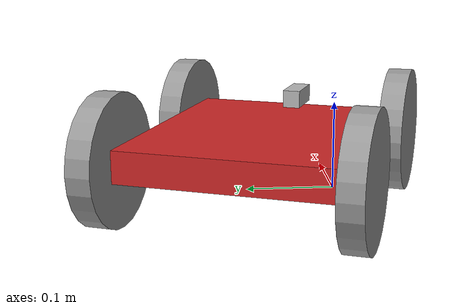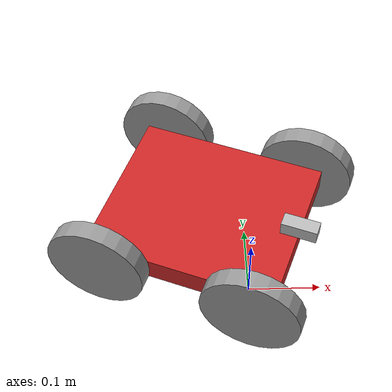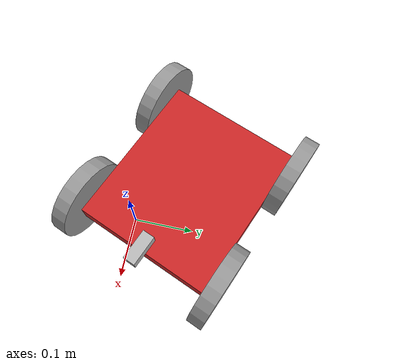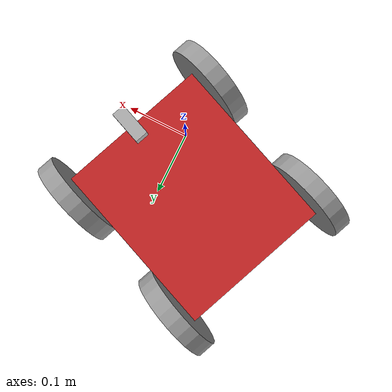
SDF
<sdf version="1.6">
 <world name="default">
  <model name="/smile">
   <link name="base_link">
    <inertial>
     <mass>1</mass>
     <inertia>
      <ixx>0.00602108</ixx>
      <ixy>0</ixy>
      <ixz>0</ixz>
      <iyy>0.00444851</iyy>
      <iyz>0</iyz>
      <izz>0.0102822</izz>
     </inertia>
    </inertial>
    <collision name="base_link_fixed_joint_lump__chassis_collision">
     <geometry><box><size>0.2667 0.2286 0.033528</size></box></geometry>
    </collision>
    <collision name="base_link_fixed_joint_lump__camera_link_collision_1">
     <pose>0.13335 0 0.026764 0 -0 0</pose>
     <geometry><box><size>0.05 0.02 0.02</size></box></geometry>
    </collision>
    <visual name="base_link_fixed_joint_lump__chassis_visual">
     <geometry><box><size>0.2667 0.2286 0.033528</size></box></geometry>
     <material>
      <script><name>Gazebo/Red</name><uri>file://media/materials/scripts/gazebo.material</uri></script>
     </material>
    </visual>
    <visual name="base_link_fixed_joint_lump__camera_link_visual_1">
     <pose>0.13335 0 0.026764 0 -0 0</pose>
     <geometry><box><size>0.05 0.02 0.02</size></box></geometry>
     <material><script><uri>__default__</uri><name>__default__</name></script></material>
    </visual>
    <sensor name="camera1" type="camera">
     <update_rate>30</update_rate>
     <camera name="head">
      <horizontal_fov>1.39626</horizontal_fov>
      <image><width>800</width><height>800</height><format>R8G8B8</format></image>
      <clip><near>0.02</near><far>300</far></clip>
      <noise><type>gaussian</type><mean>0</mean><stddev>0.007</stddev></noise>
     </camera>
     <plugin name="camera_controller" filename="libgazebo_ros_camera.so">
      <alwaysOn>1</alwaysOn>
      <updateRate>0.0</updateRate>
      <cameraName>smile/camera1</cameraName>
      <imageTopicName>image_raw</imageTopicName>
      <cameraInfoTopicName>camera_info</cameraInfoTopicName>
      <frameName>camera_link</frameName>
      <hackBaseline>0.07</hackBaseline>
      <distortionK1>0.0</distortionK1>
      <distortionK2>0.0</distortionK2>
      <distortionK3>0.0</distortionK3>
      <distortionT1>0.0</distortionT1>
      <distortionT2>0.0</distortionT2>
      <robotNamespace>/</robotNamespace>
     </plugin>
     <pose>0.13335 0 0.026764 0 -0 0</pose>
    </sensor>
    <sensor name="imu_sensor" type="imu">
     <always_on>1</always_on>
     <update_rate>100</update_rate>
     <visualize>1</visualize>
     <topic>__default_topic__</topic>
     <plugin name="imu_plugin" filename="libgazebo_ros_imu_sensor.so">
      <topicName>smile/imu</topicName>
      <bodyName>imu_link</bodyName>
      <updateRateHZ>10.0</updateRateHZ>
      <gaussianNoise>0.0</gaussianNoise>
      <xyzOffset>0 0 0</xyzOffset>
      <rpyOffset>0 0 0</rpyOffset>
      <frameName>imu_link</frameName>
      <initialOrientationAsReference>0</initialOrientationAsReference>
      <robotNamespace>/</robotNamespace>
     </plugin>
    </sensor>
   </link>
   <link name="left_back_wheel">
    <pose>-0.10795 0.1143 0 0 -0 0</pose>
    <inertial>
     <pose>0 0.0127 0 0 1.57075 1.57075</pose>
     <mass>0.5</mass>
     <inertia><ixx>0.01</ixx><ixy>0</ixy><ixz>0</ixz><iyy>0.0011758</iyy><iyz>0</iyz><izz>0.01</izz></inertia>
    </inertial>
    <collision name="left_back_wheel_collision">
     <pose>0 0.0127 0 3.14159 1.57079 -1.57084</pose>
     <geometry><cylinder><length>0.0254</length><radius>0.06858</radius></cylinder></geometry>
     <surface><friction><ode><mu>0.5</mu><mu2>0.5</mu2></ode></friction></surface>
    </collision>
    <visual name="left_back_wheel_visual">
     <pose>0 0.0127 0 3.14159 1.57079 -1.57084</pose>
     <geometry><cylinder><length>0.0254</length><radius>0.06858</radius></cylinder></geometry>
     <material>
      <script><name>Gazebo/Grey</name><uri>file://media/materials/scripts/gazebo.material</uri></script>
     </material>
    </visual>
   </link>
   <joint name="base_to_left_back_wheel" type="revolute">
    <child>left_back_wheel</child>
    <parent>base_link</parent>
    <axis>
     <xyz>0 1 0</xyz>
     <limit><lower>-1e+16</lower><upper>1e+16</upper></limit>
     <dynamics>
      <damping>1.5</damping>
      <friction>0</friction>
      <spring_reference>0</spring_reference>
      <spring_stiffness>0</spring_stiffness>
     </dynamics>
     <use_parent_model_frame>1</use_parent_model_frame>
    </axis>
   </joint>
   <link name="left_front_wheel">
    <pose>0.10795 0.1143 0 0 -0 0</pose>
    <inertial>
     <pose>0 0.0127 0 0 1.57075 1.57075</pose>
     <mass>0.5</mass>
     <inertia><ixx>0.01</ixx><ixy>0</ixy><ixz>0</ixz><iyy>0.0011758</iyy><iyz>0</iyz><izz>0.01</izz></inertia>
    </inertial>
    <collision name="left_front_wheel_collision">
     <pose>0 0.0127 0 3.14159 1.57079 -1.57084</pose>
     <geometry><cylinder><length>0.0254</length><radius>0.06858</radius></cylinder></geometry>
     <surface><friction><ode><mu>0.5</mu><mu2>0.5</mu2></ode></friction></surface>
    </collision>
    <visual name="left_front_wheel_visual">
     <pose>0 0.0127 0 3.14159 1.57079 -1.57084</pose>
     <geometry><cylinder><length>0.0254</length><radius>0.06858</radius></cylinder></geometry>
     <material>
      <script><name>Gazebo/Grey</name><uri>file://media/materials/scripts/gazebo.material</uri></script>
     </material>
    </visual>
   </link>
   <joint name="base_to_left_front_wheel" type="revolute">
    <child>left_front_wheel</child>
    <parent>base_link</parent>
    <axis>
     <xyz>0 1 0</xyz>
     <limit><lower>-1e+16</lower><upper>1e+16</upper></limit>
     <dynamics>
      <damping>1.5</damping>
      <friction>0</friction>
      <spring_reference>0</spring_reference>
      <spring_stiffness>0</spring_stiffness>
     </dynamics>
     <use_parent_model_frame>1</use_parent_model_frame>
    </axis>
   </joint>
   <link name="right_back_wheel">
    <pose>-0.10795 -0.1143 0 0 -0 0</pose>
    <inertial>
     <pose>0 -0.0127 0 0 1.57075 1.57075</pose>
     <mass>0.5</mass>
     <inertia><ixx>0.01</ixx><ixy>0</ixy><ixz>0</ixz><iyy>0.0011758</iyy><iyz>0</iyz><izz>0.01</izz></inertia>
    </inertial>
    <collision name="right_back_wheel_collision">
     <pose>0 -0.0127 0 3.14159 1.57079 -1.57084</pose>
     <geometry><cylinder><length>0.0254</length><radius>0.06858</radius></cylinder></geometry>
     <surface><friction><ode><mu>0.5</mu><mu2>0.5</mu2></ode></friction></surface>
    </collision>
    <visual name="right_back_wheel_visual">
     <pose>0 -0.0127 0 3.14159 1.57079 -1.57084</pose>
     <geometry><cylinder><length>0.0254</length><radius>0.06858</radius></cylinder></geometry>
     <material>
      <script><name>Gazebo/Grey</name><uri>file://media/materials/scripts/gazebo.material</uri></script>
     </material>
    </visual>
   </link>
   <joint name="base_to_right_back_wheel" type="revolute">
    <child>right_back_wheel</child>
    <parent>base_link</parent>
    <axis>
     <xyz>0 1 0</xyz>
     <limit><lower>-1e+16</lower><upper>1e+16</upper></limit>
     <dynamics>
      <damping>1.5</damping>
      <friction>0</friction>
      <spring_reference>0</spring_reference>
      <spring_stiffness>0</spring_stiffness>
     </dynamics>
     <use_parent_model_frame>1</use_parent_model_frame>
    </axis>
   </joint>
   <link name="right_front_wheel">
    <pose>0.10795 -0.1143 0 0 -0 0</pose>
    <inertial>
     <pose>0 -0.0127 0 0 1.57075 1.57075</pose>
     <mass>0.5</mass>
     <inertia><ixx>0.01</ixx><ixy>0</ixy><ixz>0</ixz><iyy>0.0011758</iyy><iyz>0</iyz><izz>0.01</izz></inertia>
    </inertial>
    <collision name="right_front_wheel_collision">
     <pose>0 -0.0127 0 3.14159 1.57079 -1.57084</pose>
     <geometry><cylinder><length>0.0254</length><radius>0.06858</radius></cylinder></geometry>
     <surface><friction><ode><mu>0.5</mu><mu2>0.5</mu2></ode></friction></surface>
    </collision>
    <visual name="right_front_wheel_visual">
     <pose>0 -0.0127 0 3.14159 1.57079 -1.57084</pose>
     <geometry><cylinder><length>0.0254</length><radius>0.06858</radius></cylinder></geometry>
     <material>
      <script><name>Gazebo/Grey</name><uri>file://media/materials/scripts/gazebo.material</uri></script>
     </material>
    </visual>
   </link>
   <joint name="base_to_right_front_wheel" type="revolute">
    <child>right_front_wheel</child>
    <parent>base_link</parent>
    <axis>
     <xyz>0 1 0</xyz>
     <limit><lower>-1e+16</lower><upper>1e+16</upper></limit>
     <dynamics>
      <damping>1.5</damping>
      <friction>0</friction>
      <spring_reference>0</spring_reference>
      <spring_stiffness>0</spring_stiffness>
     </dynamics>
     <use_parent_model_frame>1</use_parent_model_frame>
    </axis>
   </joint>
   <static>0</static>
   <plugin name="gazebo_ros_control" filename="libgazebo_ros_control.so">
    <robotNamespace>/smile</robotNamespace>
   </plugin>
   <pose>-0.055703 0.084259 0.06858 0 -0 -0.382953</pose>
  </model>
 </world>
</sdf>
